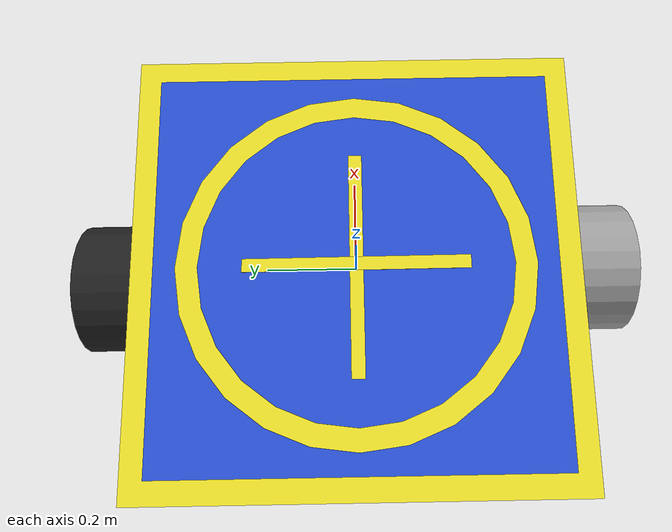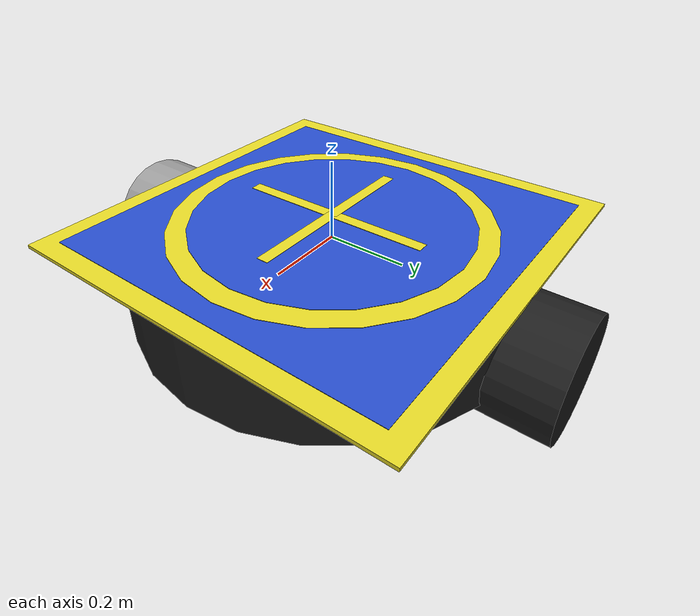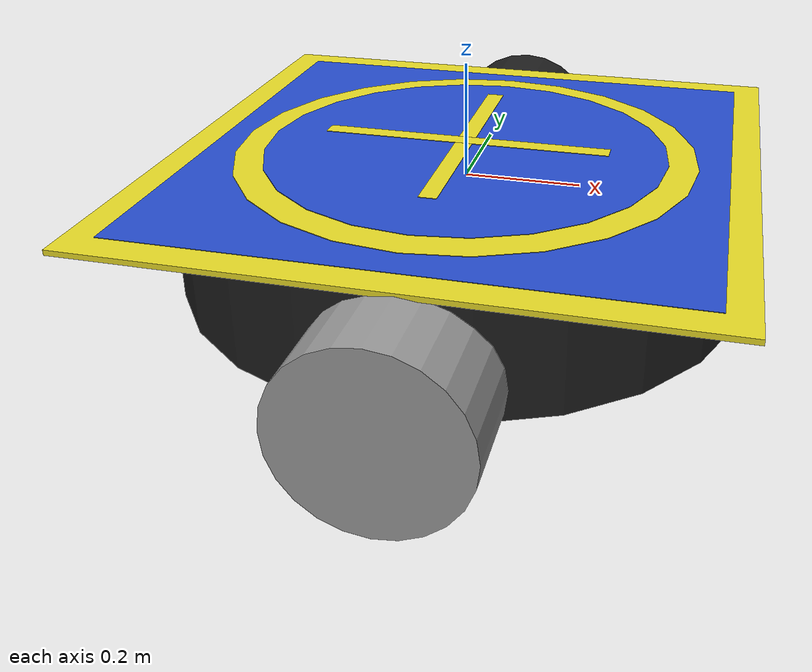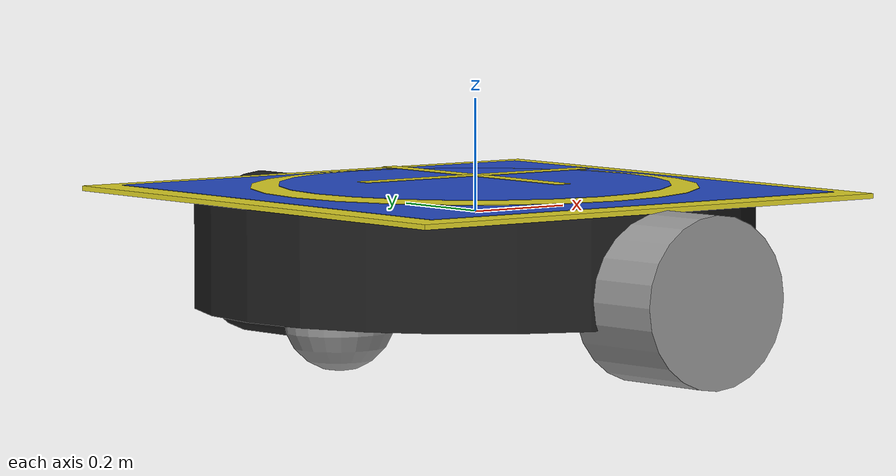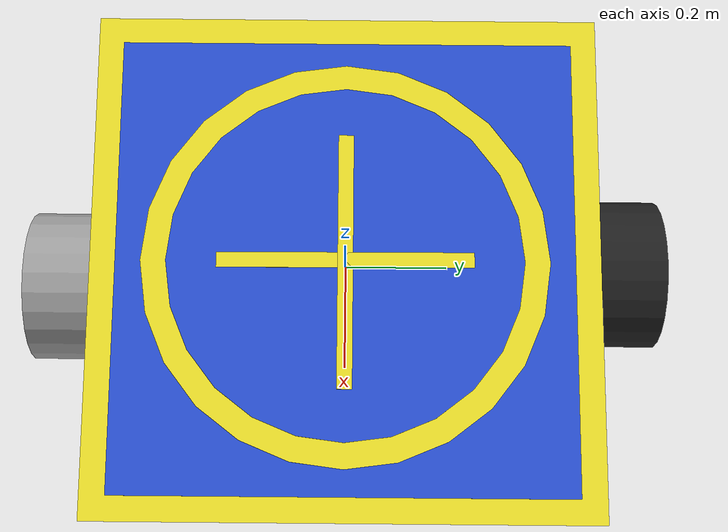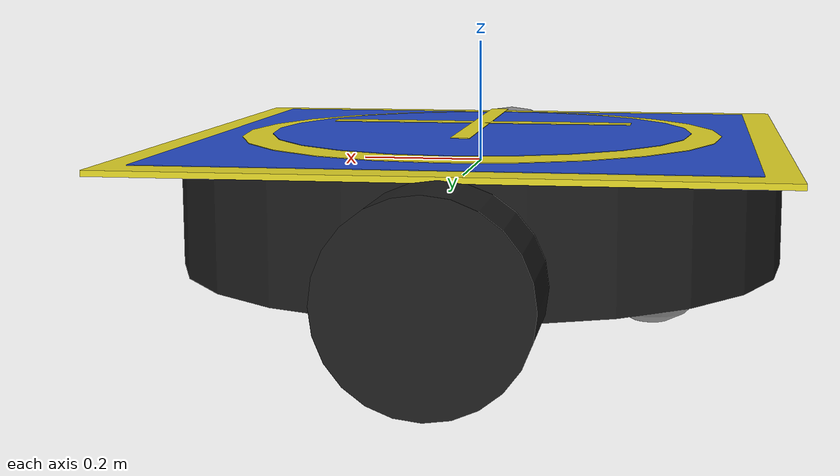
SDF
<?xml version='1.0'?>
<sdf version='1.7'>
  <model name='robo_final'>
    <link name='link_0'>
      <inertial>
        <mass>10</mass>
        <inertia>
          <ixx>0.658333</ixx>
          <ixy>0</ixy>
          <ixz>0</ixz>
          <iyy>0.658333</iyy>
          <iyz>0</iyz>
          <izz>1.25</izz>
        </inertia>
        <pose>0 0 0 0 -0 0</pose>
      </inertial>
      <pose>-0.001711 5.1e-05 -0.066229 0 -0 0</pose>
      <gravity>1</gravity>
      <self_collide>0</self_collide>
      <kinematic>0</kinematic>
      <enable_wind>0</enable_wind>
      <visual name='visual'>
        <pose>0 0 0 0 -0 0</pose>
        <geometry>
          <cylinder>
            <radius>0.5</radius>
            <length>0.2</length>
          </cylinder>
        </geometry>
        <material>
          <lighting>1</lighting>
          <script>
            <uri>file://media/materials/scripts/gazebo.material</uri>
            <name>Gazebo/Black</name>
          </script>
          <shader type='normal_map_object_space'>
            <normal_map>__default__</normal_map>
          </shader>
          <ambient>0.3 0.3 0.3 1</ambient>
          <diffuse>0.7 0.7 0.7 1</diffuse>
          <specular>0.01 0.01 0.01 1</specular>
          <emissive>0 0 0 1</emissive>
        </material>
        <transparency>0</transparency>
        <cast_shadows>1</cast_shadows>
      </visual>
      <collision name='collision'>
        <laser_retro>0</laser_retro>
        <max_contacts>10</max_contacts>
        <pose>0 0 0 0 -0 0</pose>
        <geometry>
          <cylinder>
            <radius>0.5</radius>
            <length>0.2</length>
          </cylinder>
        </geometry>
        <surface>
          <friction>
            <ode>
              <mu>1</mu>
              <mu2>1</mu2>
              <fdir1>0 0 0</fdir1>
              <slip1>0</slip1>
              <slip2>0</slip2>
            </ode>
            <torsional>
              <coefficient>1</coefficient>
              <patch_radius>0</patch_radius>
              <surface_radius>0</surface_radius>
              <use_patch_radius>1</use_patch_radius>
              <ode>
                <slip>0</slip>
              </ode>
            </torsional>
          </friction>
          <bounce>
            <restitution_coefficient>0</restitution_coefficient>
            <threshold>1e+06</threshold>
          </bounce>
          <contact>
            <collide_without_contact>0</collide_without_contact>
            <collide_without_contact_bitmask>1</collide_without_contact_bitmask>
            <collide_bitmask>1</collide_bitmask>
            <ode>
              <soft_cfm>0</soft_cfm>
              <soft_erp>0.2</soft_erp>
              <kp>1e+13</kp>
              <kd>1</kd>
              <max_vel>0.01</max_vel>
              <min_depth>0</min_depth>
            </ode>
            <bullet>
              <split_impulse>1</split_impulse>
              <split_impulse_penetration_threshold>-0.01</split_impulse_penetration_threshold>
              <soft_cfm>0</soft_cfm>
              <soft_erp>0.2</soft_erp>
              <kp>1e+13</kp>
              <kd>1</kd>
            </bullet>
          </contact>
        </surface>
      </collision>
    </link>
    <link name='link_0_0'>
      <inertial>
        <mass>1</mass>
        <inertia>
          <ixx>0.1</ixx>
          <ixy>0</ixy>
          <ixz>0</ixz>
          <iyy>0.1</iyy>
          <iyz>0</iyz>
          <izz>0.1</izz>
        </inertia>
        <pose>0 0 0 0 -0 0</pose>
      </inertial>
      <pose>0.331874 0.011041 -0.162199 0 -0 0</pose>
      <gravity>1</gravity>
      <self_collide>0</self_collide>
      <kinematic>0</kinematic>
      <enable_wind>0</enable_wind>
      <visual name='visual'>
        <pose>0 0 0 0 -0 0</pose>
        <geometry>
          <sphere>
            <radius>0.1</radius>
          </sphere>
        </geometry>
        <material>
          <lighting>1</lighting>
          <script>
            <uri>file://media/materials/scripts/gazebo.material</uri>
            <name>Gazebo/Grey</name>
          </script>
          <shader type='pixel'>
            <normal_map>__default__</normal_map>
          </shader>
          <ambient>0.3 0.3 0.3 1</ambient>
          <diffuse>0.7 0.7 0.7 1</diffuse>
          <specular>0.01 0.01 0.01 1</specular>
          <emissive>0 0 0 1</emissive>
        </material>
        <transparency>0</transparency>
        <cast_shadows>1</cast_shadows>
      </visual>
      <collision name='collision'>
        <laser_retro>0</laser_retro>
        <max_contacts>10</max_contacts>
        <pose>0 0 0 0 -0 0</pose>
        <geometry>
          <sphere>
            <radius>0.1</radius>
          </sphere>
        </geometry>
        <surface>
          <friction>
            <ode>
              <mu>1</mu>
              <mu2>1</mu2>
              <fdir1>0 0 0</fdir1>
              <slip1>0</slip1>
              <slip2>0</slip2>
            </ode>
            <torsional>
              <coefficient>1</coefficient>
              <patch_radius>0</patch_radius>
              <surface_radius>0</surface_radius>
              <use_patch_radius>1</use_patch_radius>
              <ode>
                <slip>0</slip>
              </ode>
            </torsional>
          </friction>
          <bounce>
            <restitution_coefficient>0</restitution_coefficient>
            <threshold>1e+06</threshold>
          </bounce>
          <contact>
            <collide_without_contact>0</collide_without_contact>
            <collide_without_contact_bitmask>1</collide_without_contact_bitmask>
            <collide_bitmask>1</collide_bitmask>
            <ode>
              <soft_cfm>0</soft_cfm>
              <soft_erp>0.2</soft_erp>
              <kp>1e+13</kp>
              <kd>1</kd>
              <max_vel>0.01</max_vel>
              <min_depth>0</min_depth>
            </ode>
            <bullet>
              <split_impulse>1</split_impulse>
              <split_impulse_penetration_threshold>-0.01</split_impulse_penetration_threshold>
              <soft_cfm>0</soft_cfm>
              <soft_erp>0.2</soft_erp>
              <kp>1e+13</kp>
              <kd>1</kd>
            </bullet>
          </contact>
        </surface>
      </collision>
    </link>
    <link name='link_0_0_clone'>
      <inertial>
        <mass>1</mass>
        <inertia>
          <ixx>0.1</ixx>
          <ixy>0</ixy>
          <ixz>0</ixz>
          <iyy>0.1</iyy>
          <iyz>0</iyz>
          <izz>0.1</izz>
        </inertia>
        <pose>0 0 0 0 -0 0</pose>
      </inertial>
      <pose>-0.290633 0.015988 -0.166231 0.0003 -0.01385 0.011469</pose>
      <gravity>1</gravity>
      <self_collide>0</self_collide>
      <kinematic>0</kinematic>
      <enable_wind>0</enable_wind>
      <visual name='visual'>
        <pose>0 0 0 0 -0 0</pose>
        <geometry>
          <sphere>
            <radius>0.1</radius>
          </sphere>
        </geometry>
        <material>
          <lighting>1</lighting>
          <script>
            <uri>file://media/materials/scripts/gazebo.material</uri>
            <name>Gazebo/Grey</name>
          </script>
          <shader type='pixel'>
            <normal_map>__default__</normal_map>
          </shader>
          <ambient>0.3 0.3 0.3 1</ambient>
          <diffuse>0.7 0.7 0.7 1</diffuse>
          <specular>0.01 0.01 0.01 1</specular>
          <emissive>0 0 0 1</emissive>
        </material>
        <transparency>0</transparency>
        <cast_shadows>1</cast_shadows>
      </visual>
      <collision name='collision'>
        <laser_retro>0</laser_retro>
        <max_contacts>10</max_contacts>
        <pose>0 0 0 0 -0 0</pose>
        <geometry>
          <sphere>
            <radius>0.1</radius>
          </sphere>
        </geometry>
        <surface>
          <friction>
            <ode>
              <mu>1</mu>
              <mu2>1</mu2>
              <fdir1>0 0 0</fdir1>
              <slip1>0</slip1>
              <slip2>0</slip2>
            </ode>
            <torsional>
              <coefficient>1</coefficient>
              <patch_radius>0</patch_radius>
              <surface_radius>0</surface_radius>
              <use_patch_radius>1</use_patch_radius>
              <ode>
                <slip>0</slip>
              </ode>
            </torsional>
          </friction>
          <bounce>
            <restitution_coefficient>0</restitution_coefficient>
            <threshold>1e+06</threshold>
          </bounce>
          <contact>
            <collide_without_contact>0</collide_without_contact>
            <collide_without_contact_bitmask>1</collide_without_contact_bitmask>
            <collide_bitmask>1</collide_bitmask>
            <ode>
              <soft_cfm>0</soft_cfm>
              <soft_erp>0.2</soft_erp>
              <kp>1e+13</kp>
              <kd>1</kd>
              <max_vel>0.01</max_vel>
              <min_depth>0</min_depth>
            </ode>
            <bullet>
              <split_impulse>1</split_impulse>
              <split_impulse_penetration_threshold>-0.01</split_impulse_penetration_threshold>
              <soft_cfm>0</soft_cfm>
              <soft_erp>0.2</soft_erp>
              <kp>1e+13</kp>
              <kd>1</kd>
            </bullet>
          </contact>
        </surface>
      </collision>
    </link>
    <link name='link_10'>
      <inertial>
        <mass>1</mass>
        <inertia>
          <ixx>0.145833</ixx>
          <ixy>0</ixy>
          <ixz>0</ixz>
          <iyy>0.145833</iyy>
          <iyz>0</iyz>
          <izz>0.125</izz>
        </inertia>
        <pose>0 0 0 0 -0 0</pose>
      </inertial>
      <pose>-0.001711 5.1e-05 0.048771 0 -0 0</pose>
      <gravity>0</gravity>
      <self_collide>0</self_collide>
      <kinematic>0</kinematic>
      <enable_wind>0</enable_wind>
      <visual name='visual'>
        <pose>0 0 0 0 -0 0</pose>
        <geometry>
          <cylinder>
            <radius>0.35</radius>
            <length>0.001</length>
          </cylinder>
        </geometry>
        <material>
          <lighting>1</lighting>
          <script>
            <uri>file://media/materials/scripts/gazebo.material</uri>
            <name>Gazebo/Blue</name>
          </script>
          <shader type='pixel'>
            <normal_map>__default__</normal_map>
          </shader>
          <ambient>0 0 1 1</ambient>
          <diffuse>0 0 1 1</diffuse>
          <specular>0.1 0.1 0.1 1</specular>
          <emissive>0 0 0 1</emissive>
        </material>
        <transparency>0</transparency>
        <cast_shadows>1</cast_shadows>
      </visual>
      <collision name='collision'>
        <laser_retro>0</laser_retro>
        <max_contacts>10</max_contacts>
        <pose>0 0 0 0 -0 0</pose>
        <geometry>
          <cylinder>
            <radius>0.35</radius>
            <length>0.001</length>
          </cylinder>
        </geometry>
        <surface>
          <friction>
            <ode>
              <mu>1</mu>
              <mu2>1</mu2>
              <fdir1>0 0 0</fdir1>
              <slip1>0</slip1>
              <slip2>0</slip2>
            </ode>
            <torsional>
              <coefficient>1</coefficient>
              <patch_radius>0</patch_radius>
              <surface_radius>0</surface_radius>
              <use_patch_radius>1</use_patch_radius>
              <ode>
                <slip>0</slip>
              </ode>
            </torsional>
          </friction>
          <bounce>
            <restitution_coefficient>0</restitution_coefficient>
            <threshold>1e+06</threshold>
          </bounce>
          <contact>
            <collide_without_contact>0</collide_without_contact>
            <collide_without_contact_bitmask>1</collide_without_contact_bitmask>
            <collide_bitmask>1</collide_bitmask>
            <ode>
              <soft_cfm>0</soft_cfm>
              <soft_erp>0.2</soft_erp>
              <kp>1e+13</kp>
              <kd>1</kd>
              <max_vel>0.01</max_vel>
              <min_depth>0</min_depth>
            </ode>
            <bullet>
              <split_impulse>1</split_impulse>
              <split_impulse_penetration_threshold>-0.01</split_impulse_penetration_threshold>
              <soft_cfm>0</soft_cfm>
              <soft_erp>0.2</soft_erp>
              <kp>1e+13</kp>
              <kd>1</kd>
            </bullet>
          </contact>
        </surface>
      </collision>
    </link>
    <link name='link_11'>
      <inertial>
        <mass>1</mass>
        <inertia>
          <ixx>0.166667</ixx>
          <ixy>0</ixy>
          <ixz>0</ixz>
          <iyy>0.166667</iyy>
          <iyz>0</iyz>
          <izz>0.166667</izz>
        </inertia>
        <pose>0 0 0 0 -0 0</pose>
      </inertial>
      <pose>-0.001711 5.1e-05 0.063771 0 -0 0</pose>
      <gravity>0</gravity>
      <self_collide>0</self_collide>
      <kinematic>0</kinematic>
      <enable_wind>0</enable_wind>
      <visual name='visual'>
        <pose>0 0 0 0 -0 0</pose>
        <geometry>
          <box>
            <size>0.5 0.03 0.001</size>
          </box>
        </geometry>
        <material>
          <lighting>1</lighting>
          <script>
            <uri>file://media/materials/scripts/gazebo.material</uri>
            <name>Gazebo/Yellow</name>
          </script>
          <shader type='pixel'>
            <normal_map>__default__</normal_map>
          </shader>
          <ambient>1 1 0 1</ambient>
          <diffuse>1 1 0 1</diffuse>
          <emissive>0 0 0 1</emissive>
        </material>
        <transparency>0</transparency>
        <cast_shadows>1</cast_shadows>
      </visual>
      <collision name='collision'>
        <laser_retro>0</laser_retro>
        <max_contacts>10</max_contacts>
        <pose>0 0 0 0 -0 0</pose>
        <geometry>
          <box>
            <size>0.5 0.03 0.001</size>
          </box>
        </geometry>
        <surface>
          <friction>
            <ode>
              <mu>1</mu>
              <mu2>1</mu2>
              <fdir1>0 0 0</fdir1>
              <slip1>0</slip1>
              <slip2>0</slip2>
            </ode>
            <torsional>
              <coefficient>1</coefficient>
              <patch_radius>0</patch_radius>
              <surface_radius>0</surface_radius>
              <use_patch_radius>1</use_patch_radius>
              <ode>
                <slip>0</slip>
              </ode>
            </torsional>
          </friction>
          <bounce>
            <restitution_coefficient>0</restitution_coefficient>
            <threshold>1e+06</threshold>
          </bounce>
          <contact>
            <collide_without_contact>0</collide_without_contact>
            <collide_without_contact_bitmask>1</collide_without_contact_bitmask>
            <collide_bitmask>1</collide_bitmask>
            <ode>
              <soft_cfm>0</soft_cfm>
              <soft_erp>0.2</soft_erp>
              <kp>1e+13</kp>
              <kd>1</kd>
              <max_vel>0.01</max_vel>
              <min_depth>0</min_depth>
            </ode>
            <bullet>
              <split_impulse>1</split_impulse>
              <split_impulse_penetration_threshold>-0.01</split_impulse_penetration_threshold>
              <soft_cfm>0</soft_cfm>
              <soft_erp>0.2</soft_erp>
              <kp>1e+13</kp>
              <kd>1</kd>
            </bullet>
          </contact>
        </surface>
      </collision>
    </link>
    <link name='link_11_clone'>
      <inertial>
        <mass>1</mass>
        <inertia>
          <ixx>0.166667</ixx>
          <ixy>0</ixy>
          <ixz>0</ixz>
          <iyy>0.166667</iyy>
          <iyz>0</iyz>
          <izz>0.166667</izz>
        </inertia>
        <pose>0 0 0 0 -0 0</pose>
      </inertial>
      <pose>-0.001711 5.1e-05 0.063771 0 0 -1.56656</pose>
      <gravity>0</gravity>
      <self_collide>0</self_collide>
      <kinematic>0</kinematic>
      <enable_wind>0</enable_wind>
      <visual name='visual'>
        <pose>0 0 0 0 -0 0</pose>
        <geometry>
          <box>
            <size>0.5 0.03 0.001</size>
          </box>
        </geometry>
        <material>
          <lighting>1</lighting>
          <script>
            <uri>file://media/materials/scripts/gazebo.material</uri>
            <name>Gazebo/Yellow</name>
          </script>
          <shader type='pixel'>
            <normal_map>__default__</normal_map>
          </shader>
          <ambient>1 1 0 1</ambient>
          <diffuse>1 1 0 1</diffuse>
          <emissive>0 0 0 1</emissive>
        </material>
        <transparency>0</transparency>
        <cast_shadows>1</cast_shadows>
      </visual>
      <collision name='collision'>
        <laser_retro>0</laser_retro>
        <max_contacts>10</max_contacts>
        <pose>0 0 0 0 -0 0</pose>
        <geometry>
          <box>
            <size>0.5 0.03 0.001</size>
          </box>
        </geometry>
        <surface>
          <friction>
            <ode>
              <mu>1</mu>
              <mu2>1</mu2>
              <fdir1>0 0 0</fdir1>
              <slip1>0</slip1>
              <slip2>0</slip2>
            </ode>
            <torsional>
              <coefficient>1</coefficient>
              <patch_radius>0</patch_radius>
              <surface_radius>0</surface_radius>
              <use_patch_radius>1</use_patch_radius>
              <ode>
                <slip>0</slip>
              </ode>
            </torsional>
          </friction>
          <bounce>
            <restitution_coefficient>0</restitution_coefficient>
            <threshold>1e+06</threshold>
          </bounce>
          <contact>
            <collide_without_contact>0</collide_without_contact>
            <collide_without_contact_bitmask>1</collide_without_contact_bitmask>
            <collide_bitmask>1</collide_bitmask>
            <ode>
              <soft_cfm>0</soft_cfm>
              <soft_erp>0.2</soft_erp>
              <kp>1e+13</kp>
              <kd>1</kd>
              <max_vel>0.01</max_vel>
              <min_depth>0</min_depth>
            </ode>
            <bullet>
              <split_impulse>1</split_impulse>
              <split_impulse_penetration_threshold>-0.01</split_impulse_penetration_threshold>
              <soft_cfm>0</soft_cfm>
              <soft_erp>0.2</soft_erp>
              <kp>1e+13</kp>
              <kd>1</kd>
            </bullet>
          </contact>
        </surface>
      </collision>
    </link>
    <link name='link_2'>
      <inertial>
        <mass>1</mass>
        <inertia>
          <ixx>0.145833</ixx>
          <ixy>0</ixy>
          <ixz>0</ixz>
          <iyy>0.145833</iyy>
          <iyz>0</iyz>
          <izz>0.125</izz>
        </inertia>
        <pose>0 0 0 0 -0 0</pose>
      </inertial>
      <pose>-0.010942 0.531287 -0.116229 -1.57515 -0 -0</pose>
      <gravity>0</gravity>
      <self_collide>0</self_collide>
      <kinematic>0</kinematic>
      <enable_wind>1</enable_wind>
      <visual name='visual'>
        <pose>0 0 0 0 -0 0</pose>
        <geometry>
          <cylinder>
            <radius>0.15</radius>
            <length>0.2</length>
          </cylinder>
        </geometry>
        <material>
          <lighting>1</lighting>
          <script>
            <uri>file://media/materials/scripts/gazebo.material</uri>
            <name>Gazebo/Black</name>
          </script>
          <shader type='pixel'>
            <normal_map>__default__</normal_map>
          </shader>
          <ambient>0.3 0.3 0.3 1</ambient>
          <diffuse>0.7 0.7 0.7 1</diffuse>
          <specular>0.01 0.01 0.01 1</specular>
          <emissive>0 0 0 1</emissive>
        </material>
        <transparency>0</transparency>
        <cast_shadows>1</cast_shadows>
      </visual>
      <collision name='collision'>
        <laser_retro>0</laser_retro>
        <max_contacts>10</max_contacts>
        <pose>0 0 0 0 -0 0</pose>
        <geometry>
          <cylinder>
            <radius>0.15</radius>
            <length>0.2</length>
          </cylinder>
        </geometry>
        <surface>
          <friction>
            <ode>
              <mu>1</mu>
              <mu2>1</mu2>
              <fdir1>0 0 0</fdir1>
              <slip1>0</slip1>
              <slip2>0</slip2>
            </ode>
            <torsional>
              <coefficient>1</coefficient>
              <patch_radius>0</patch_radius>
              <surface_radius>0</surface_radius>
              <use_patch_radius>1</use_patch_radius>
              <ode>
                <slip>0</slip>
              </ode>
            </torsional>
          </friction>
          <bounce>
            <restitution_coefficient>0</restitution_coefficient>
            <threshold>1e+06</threshold>
          </bounce>
          <contact>
            <collide_without_contact>0</collide_without_contact>
            <collide_without_contact_bitmask>1</collide_without_contact_bitmask>
            <collide_bitmask>1</collide_bitmask>
            <ode>
              <soft_cfm>0</soft_cfm>
              <soft_erp>0.2</soft_erp>
              <kp>1e+13</kp>
              <kd>1</kd>
              <max_vel>0.01</max_vel>
              <min_depth>0</min_depth>
            </ode>
            <bullet>
              <split_impulse>1</split_impulse>
              <split_impulse_penetration_threshold>-0.01</split_impulse_penetration_threshold>
              <soft_cfm>0</soft_cfm>
              <soft_erp>0.2</soft_erp>
              <kp>1e+13</kp>
              <kd>1</kd>
            </bullet>
          </contact>
        </surface>
      </collision>
    </link>
    <link name='link_2_clone'>
      <inertial>
        <mass>1</mass>
        <inertia>
          <ixx>0.145833</ixx>
          <ixy>0</ixy>
          <ixz>0</ixz>
          <iyy>0.145833</iyy>
          <iyz>0</iyz>
          <izz>0.125</izz>
        </inertia>
        <pose>0 0 0 0 -0 0</pose>
      </inertial>
      <pose>0.022915 -0.531643 -0.116169 -1.57515 -0 -0</pose>
      <gravity>0</gravity>
      <self_collide>0</self_collide>
      <kinematic>0</kinematic>
      <enable_wind>0</enable_wind>
      <visual name='visual'>
        <pose>0 0 0 0 -0 0</pose>
        <geometry>
          <cylinder>
            <radius>0.15</radius>
            <length>0.2</length>
          </cylinder>
        </geometry>
        <material>
          <lighting>1</lighting>
          <script>
            <uri>file://media/materials/scripts/gazebo.material</uri>
            <name>Gazebo/Grey</name>
          </script>
          <shader type='pixel'>
            <normal_map>__default__</normal_map>
          </shader>
          <ambient>0.3 0.3 0.3 1</ambient>
          <diffuse>0.7 0.7 0.7 1</diffuse>
          <specular>0.01 0.01 0.01 1</specular>
          <emissive>0 0 0 1</emissive>
        </material>
        <transparency>0</transparency>
        <cast_shadows>1</cast_shadows>
      </visual>
      <collision name='collision'>
        <laser_retro>0</laser_retro>
        <max_contacts>10</max_contacts>
        <pose>0 0 0 0 -0 0</pose>
        <geometry>
          <cylinder>
            <radius>0.15</radius>
            <length>0.2</length>
          </cylinder>
        </geometry>
        <surface>
          <friction>
            <ode>
              <mu>1</mu>
              <mu2>1</mu2>
              <fdir1>0 0 0</fdir1>
              <slip1>0</slip1>
              <slip2>0</slip2>
            </ode>
            <torsional>
              <coefficient>1</coefficient>
              <patch_radius>0</patch_radius>
              <surface_radius>0</surface_radius>
              <use_patch_radius>1</use_patch_radius>
              <ode>
                <slip>0</slip>
              </ode>
            </torsional>
          </friction>
          <bounce>
            <restitution_coefficient>0</restitution_coefficient>
            <threshold>1e+06</threshold>
          </bounce>
          <contact>
            <collide_without_contact>0</collide_without_contact>
            <collide_without_contact_bitmask>1</collide_without_contact_bitmask>
            <collide_bitmask>1</collide_bitmask>
            <ode>
              <soft_cfm>0</soft_cfm>
              <soft_erp>0.2</soft_erp>
              <kp>1e+13</kp>
              <kd>1</kd>
              <max_vel>0.01</max_vel>
              <min_depth>0</min_depth>
            </ode>
            <bullet>
              <split_impulse>1</split_impulse>
              <split_impulse_penetration_threshold>-0.01</split_impulse_penetration_threshold>
              <soft_cfm>0</soft_cfm>
              <soft_erp>0.2</soft_erp>
              <kp>1e+13</kp>
              <kd>1</kd>
            </bullet>
          </contact>
        </surface>
      </collision>
    </link>
    <link name='link_5'>
      <inertial>
        <mass>1</mass>
        <inertia>
          <ixx>0.166667</ixx>
          <ixy>0</ixy>
          <ixz>0</ixz>
          <iyy>0.166667</iyy>
          <iyz>0</iyz>
          <izz>0.166667</izz>
        </inertia>
        <pose>0 0 0 0 -0 0</pose>
      </inertial>
      <pose>-0.001711 5.1e-05 0.033771 0 -0 0</pose>
      <gravity>0</gravity>
      <self_collide>0</self_collide>
      <kinematic>0</kinematic>
      <enable_wind>0</enable_wind>
      <visual name='visual'>
        <pose>0 0 0 0 -0 0</pose>
        <geometry>
          <box>
            <size>1 1 0.009</size>
          </box>
        </geometry>
        <material>
          <lighting>1</lighting>
          <script>
            <uri>file://media/materials/scripts/gazebo.material</uri>
            <name>Gazebo/Yellow</name>
          </script>
          <shader type='pixel'>
            <normal_map>__default__</normal_map>
          </shader>
          <ambient>1 1 0 1</ambient>
          <diffuse>1 1 0 1</diffuse>
          <emissive>0 0 0 1</emissive>
        </material>
        <transparency>0</transparency>
        <cast_shadows>1</cast_shadows>
      </visual>
      <collision name='collision'>
        <laser_retro>0</laser_retro>
        <max_contacts>10</max_contacts>
        <pose>0 0 0 0 -0 0</pose>
        <geometry>
          <box>
            <size>1 1 0.009</size>
          </box>
        </geometry>
        <surface>
          <friction>
            <ode>
              <mu>1</mu>
              <mu2>1</mu2>
              <fdir1>0 0 0</fdir1>
              <slip1>0</slip1>
              <slip2>0</slip2>
            </ode>
            <torsional>
              <coefficient>1</coefficient>
              <patch_radius>0</patch_radius>
              <surface_radius>0</surface_radius>
              <use_patch_radius>1</use_patch_radius>
              <ode>
                <slip>0</slip>
              </ode>
            </torsional>
          </friction>
          <bounce>
            <restitution_coefficient>0</restitution_coefficient>
            <threshold>1e+06</threshold>
          </bounce>
          <contact>
            <collide_without_contact>0</collide_without_contact>
            <collide_without_contact_bitmask>1</collide_without_contact_bitmask>
            <collide_bitmask>1</collide_bitmask>
            <ode>
              <soft_cfm>0</soft_cfm>
              <soft_erp>0.2</soft_erp>
              <kp>1e+13</kp>
              <kd>1</kd>
              <max_vel>0.01</max_vel>
              <min_depth>0</min_depth>
            </ode>
            <bullet>
              <split_impulse>1</split_impulse>
              <split_impulse_penetration_threshold>-0.01</split_impulse_penetration_threshold>
              <soft_cfm>0</soft_cfm>
              <soft_erp>0.2</soft_erp>
              <kp>1e+13</kp>
              <kd>1</kd>
            </bullet>
          </contact>
        </surface>
      </collision>
    </link>
    <link name='link_7'>
      <inertial>
        <mass>1</mass>
        <inertia>
          <ixx>0.166667</ixx>
          <ixy>0</ixy>
          <ixz>0</ixz>
          <iyy>0.166667</iyy>
          <iyz>0</iyz>
          <izz>0.166667</izz>
        </inertia>
        <pose>0 0 0 0 -0 0</pose>
      </inertial>
      <pose>-0 -0 0.04 0 -0 0</pose>
      <gravity>0</gravity>
      <self_collide>0</self_collide>
      <kinematic>0</kinematic>
      <enable_wind>1</enable_wind>
      <visual name='visual'>
        <pose>0 0 0 0 -0 0</pose>
        <geometry>
          <box>
            <size>0.9 0.9 0.001</size>
          </box>
        </geometry>
        <material>
          <lighting>1</lighting>
          <script>
            <uri>file://media/materials/scripts/gazebo.material</uri>
            <name>Gazebo/Blue</name>
          </script>
          <shader type='pixel'>
            <normal_map>__default__</normal_map>
          </shader>
          <ambient>0 0 1 1</ambient>
          <diffuse>0 0 1 1</diffuse>
          <specular>0.1 0.1 0.1 1</specular>
          <emissive>0 0 0 1</emissive>
        </material>
        <transparency>0</transparency>
        <cast_shadows>1</cast_shadows>
      </visual>
      <collision name='collision'>
        <laser_retro>0</laser_retro>
        <max_contacts>10</max_contacts>
        <pose>0 0 0 0 -0 0</pose>
        <geometry>
          <box>
            <size>0.9 0.9 0.009</size>
          </box>
        </geometry>
        <surface>
          <friction>
            <ode>
              <mu>1</mu>
              <mu2>1</mu2>
              <fdir1>0 0 0</fdir1>
              <slip1>0</slip1>
              <slip2>0</slip2>
            </ode>
            <torsional>
              <coefficient>1</coefficient>
              <patch_radius>0</patch_radius>
              <surface_radius>0</surface_radius>
              <use_patch_radius>1</use_patch_radius>
              <ode>
                <slip>0</slip>
              </ode>
            </torsional>
          </friction>
          <bounce>
            <restitution_coefficient>0</restitution_coefficient>
            <threshold>1e+06</threshold>
          </bounce>
          <contact>
            <collide_without_contact>0</collide_without_contact>
            <collide_without_contact_bitmask>1</collide_without_contact_bitmask>
            <collide_bitmask>1</collide_bitmask>
            <ode>
              <soft_cfm>0</soft_cfm>
              <soft_erp>0.2</soft_erp>
              <kp>1e+13</kp>
              <kd>1</kd>
              <max_vel>0.01</max_vel>
              <min_depth>0</min_depth>
            </ode>
            <bullet>
              <split_impulse>1</split_impulse>
              <split_impulse_penetration_threshold>-0.01</split_impulse_penetration_threshold>
              <soft_cfm>0</soft_cfm>
              <soft_erp>0.2</soft_erp>
              <kp>1e+13</kp>
              <kd>1</kd>
            </bullet>
          </contact>
        </surface>
      </collision>
    </link>
    <link name='link_8'>
      <inertial>
        <mass>1</mass>
        <inertia>
          <ixx>0.145833</ixx>
          <ixy>0</ixy>
          <ixz>0</ixz>
          <iyy>0.145833</iyy>
          <iyz>0</iyz>
          <izz>0.125</izz>
        </inertia>
        <pose>0 0 0 0 -0 0</pose>
      </inertial>
      <pose>-0.001711 5.1e-05 0.044771 0 -0 0</pose>
      <gravity>0</gravity>
      <self_collide>0</self_collide>
      <kinematic>0</kinematic>
      <enable_wind>0</enable_wind>
      <visual name='visual'>
        <pose>0 0 0 0 -0 0</pose>
        <geometry>
          <cylinder>
            <radius>0.4</radius>
            <length>0.001</length>
          </cylinder>
        </geometry>
        <material>
          <lighting>1</lighting>
          <script>
            <uri>file://media/materials/scripts/gazebo.material</uri>
            <name>Gazebo/Yellow</name>
          </script>
          <shader type='pixel'>
            <normal_map>__default__</normal_map>
          </shader>
          <ambient>1 1 0 1</ambient>
          <diffuse>1 1 0 1</diffuse>
          <emissive>0 0 0 1</emissive>
        </material>
        <transparency>0</transparency>
        <cast_shadows>1</cast_shadows>
      </visual>
      <collision name='collision'>
        <laser_retro>0</laser_retro>
        <max_contacts>10</max_contacts>
        <pose>0 0 0 0 -0 0</pose>
        <geometry>
          <cylinder>
            <radius>0.4</radius>
            <length>0.001</length>
          </cylinder>
        </geometry>
        <surface>
          <friction>
            <ode>
              <mu>1</mu>
              <mu2>1</mu2>
              <fdir1>0 0 0</fdir1>
              <slip1>0</slip1>
              <slip2>0</slip2>
            </ode>
            <torsional>
              <coefficient>1</coefficient>
              <patch_radius>0</patch_radius>
              <surface_radius>0</surface_radius>
              <use_patch_radius>1</use_patch_radius>
              <ode>
                <slip>0</slip>
              </ode>
            </torsional>
          </friction>
          <bounce>
            <restitution_coefficient>0</restitution_coefficient>
            <threshold>1e+06</threshold>
          </bounce>
          <contact>
            <collide_without_contact>0</collide_without_contact>
            <collide_without_contact_bitmask>1</collide_without_contact_bitmask>
            <collide_bitmask>1</collide_bitmask>
            <ode>
              <soft_cfm>0</soft_cfm>
              <soft_erp>0.2</soft_erp>
              <kp>1e+13</kp>
              <kd>1</kd>
              <max_vel>0.01</max_vel>
              <min_depth>0</min_depth>
            </ode>
            <bullet>
              <split_impulse>1</split_impulse>
              <split_impulse_penetration_threshold>-0.01</split_impulse_penetration_threshold>
              <soft_cfm>0</soft_cfm>
              <soft_erp>0.2</soft_erp>
              <kp>1e+13</kp>
              <kd>1</kd>
            </bullet>
          </contact>
        </surface>
      </collision>
    </link>
    <joint name='bolinha de trãs' type='fixed'>
      <parent>link_0</parent>
      <child>link_0_0_clone</child>
      <pose>0 0 0 0 -0 0</pose>
      <physics>
        <ode>
          <limit>
            <cfm>0</cfm>
            <erp>0.2</erp>
          </limit>
          <suspension>
            <cfm>0</cfm>
            <erp>0.2</erp>
          </suspension>
        </ode>
      </physics>
    </joint>
    <joint name='reta horizontal do +' type='fixed'>
      <parent>link_0</parent>
      <child>link_11_clone</child>
      <pose>0 0 0 -0.03 0 0</pose>
      <physics>
        <ode>
          <limit>
            <cfm>0</cfm>
            <erp>0.2</erp>
          </limit>
          <suspension>
            <cfm>0</cfm>
            <erp>0.2</erp>
          </suspension>
        </ode>
      </physics>
    </joint>
    <joint name='bolinha da frente' type='fixed'>
      <parent>link_0</parent>
      <child>link_0_0</child>
      <pose>0 0 0 0 -0 0</pose>
      <physics>
        <ode>
          <limit>
            <cfm>0</cfm>
            <erp>0.2</erp>
          </limit>
          <suspension>
            <cfm>0</cfm>
            <erp>0.2</erp>
          </suspension>
        </ode>
      </physics>
    </joint>
    <joint name='roda esquerda' type='revolute'>
      <parent>link_0</parent>
      <child>link_2</child>
      <pose>0 0 0 0 -0 0</pose>
      <axis>
        <xyz>0 0 1</xyz>
        <limit>
          <lower>-1.79769e+308</lower>
          <upper>1.79769e+308</upper>
          <effort>-1</effort>
          <velocity>-1</velocity>
        </limit>
        <dynamics>
          <spring_reference>0</spring_reference>
          <spring_stiffness>0</spring_stiffness>
          <damping>0</damping>
          <friction>0</friction>
        </dynamics>
      </axis>
      <physics>
        <ode>
          <limit>
            <cfm>0</cfm>
            <erp>0.2</erp>
          </limit>
          <suspension>
            <cfm>0</cfm>
            <erp>0.2</erp>
          </suspension>
        </ode>
      </physics>
    </joint>
    <joint name='roda direita' type='revolute'>
      <parent>link_0</parent>
      <child>link_2_clone</child>
      <pose>0 0 0 -0.02 0 0</pose>
      <axis>
        <xyz>0 0 1</xyz>
        <limit>
          <lower>-1.79769e+308</lower>
          <upper>1.79769e+308</upper>
          <effort>-1</effort>
          <velocity>-1</velocity>
        </limit>
        <dynamics>
          <spring_reference>0</spring_reference>
          <spring_stiffness>0</spring_stiffness>
          <damping>0</damping>
          <friction>0</friction>
        </dynamics>
      </axis>
      <physics>
        <ode>
          <limit>
            <cfm>0</cfm>
            <erp>0.2</erp>
          </limit>
          <suspension>
            <cfm>0</cfm>
            <erp>0.2</erp>
          </suspension>
        </ode>
      </physics>
    </joint>
    <joint name='quadrado amarelo' type='fixed'>
      <parent>link_0</parent>
      <child>link_5</child>
      <pose>0 0 0 0 -0 0</pose>
      <physics>
        <ode>
          <limit>
            <cfm>0</cfm>
            <erp>0.2</erp>
          </limit>
          <suspension>
            <cfm>0</cfm>
            <erp>0.2</erp>
          </suspension>
        </ode>
      </physics>
    </joint>
    <joint name='quadrado azul' type='fixed'>
      <parent>link_0</parent>
      <child>link_7</child>
      <pose>0 0 0 -0.01 0 0</pose>
      <physics>
        <ode>
          <limit>
            <cfm>0</cfm>
            <erp>0.2</erp>
          </limit>
          <suspension>
            <cfm>0</cfm>
            <erp>0.2</erp>
          </suspension>
        </ode>
      </physics>
    </joint>
    <joint name='cĩrculo amarelo' type='fixed'>
      <parent>link_0</parent>
      <child>link_8</child>
      <pose>0 0 0 0 -0 0</pose>
      <physics>
        <ode>
          <limit>
            <cfm>0</cfm>
            <erp>0.2</erp>
          </limit>
          <suspension>
            <cfm>0</cfm>
            <erp>0.2</erp>
          </suspension>
        </ode>
      </physics>
    </joint>
    <joint name='circulo azul' type='fixed'>
      <parent>link_0</parent>
      <child>link_10</child>
      <pose>0 0 0 0 -0 0</pose>
      <physics>
        <ode>
          <limit>
            <cfm>0</cfm>
            <erp>0.2</erp>
          </limit>
          <suspension>
            <cfm>0</cfm>
            <erp>0.2</erp>
          </suspension>
        </ode>
      </physics>
    </joint>
    <joint name='reta vertical do +' type='fixed'>
      <parent>link_0</parent>
      <child>link_11</child>
      <pose>0 0 0 0 -0 0</pose>
      <physics>
        <ode>
          <limit>
            <cfm>0</cfm>
            <erp>0.2</erp>
          </limit>
          <suspension>
            <cfm>0</cfm>
            <erp>0.2</erp>
          </suspension>
        </ode>
      </physics>
    </joint>
    <static>0</static>
    <allow_auto_disable>1</allow_auto_disable>
    <plugin name='gz::sim::systems::DiffDrive' filename='gz-sim-diff-drive-system'>
      <left_joint>link_0_JOINT_2</left_joint>
      <right_joint>link_0_JOINT_3</right_joint>
      <wheel_separation>1.06293</wheel_separation>
      <wheel_radius>0.15</wheel_radius>
      <odom_publish_frequency>1</odom_publish_frequency>
      <topic>cmd_vel</topic>
    </plugin>
  </model>
</sdf>
